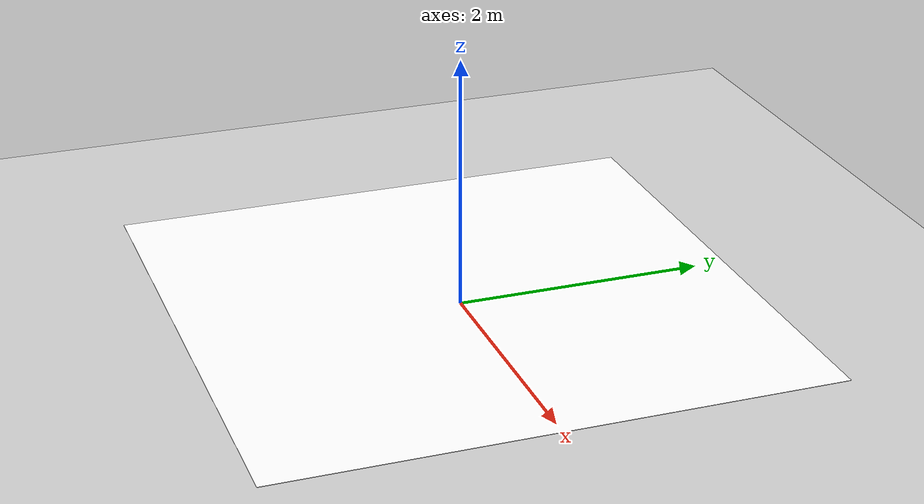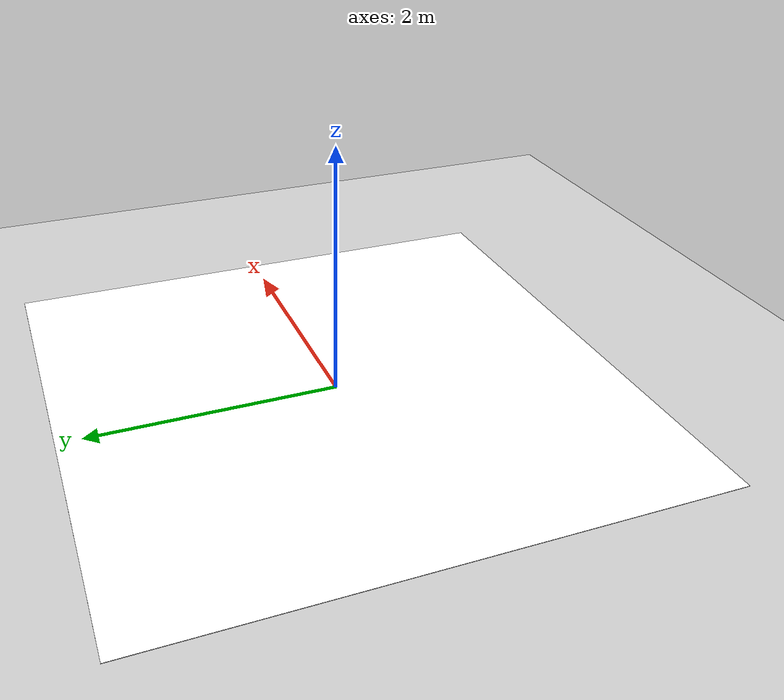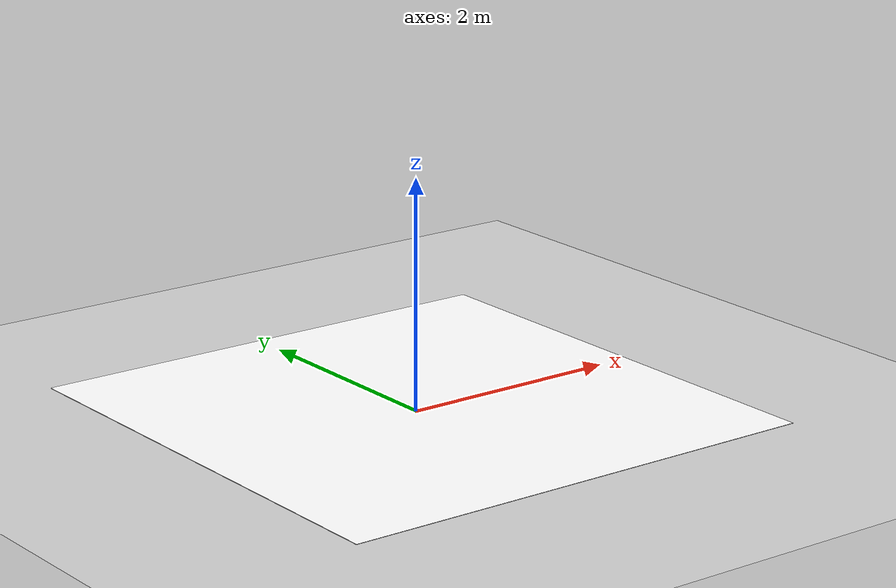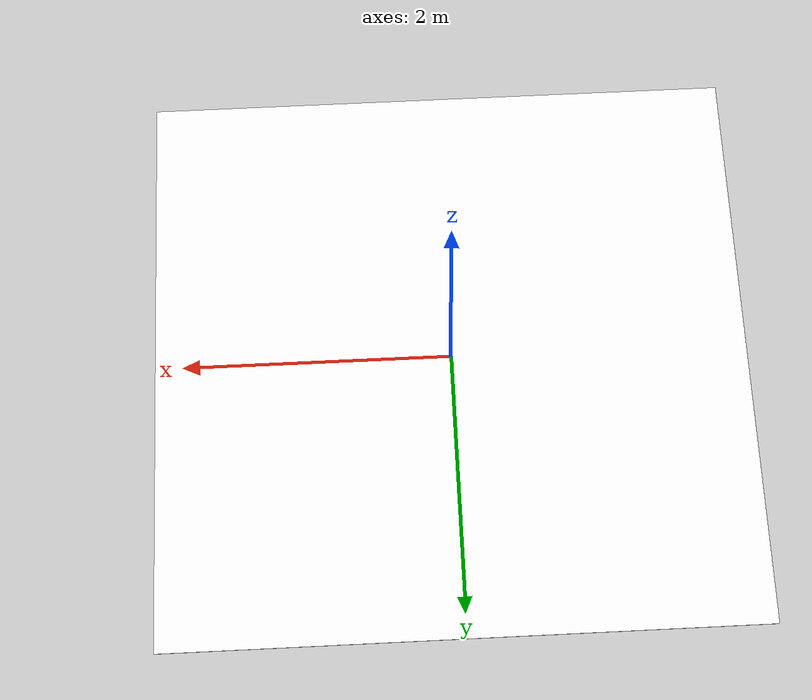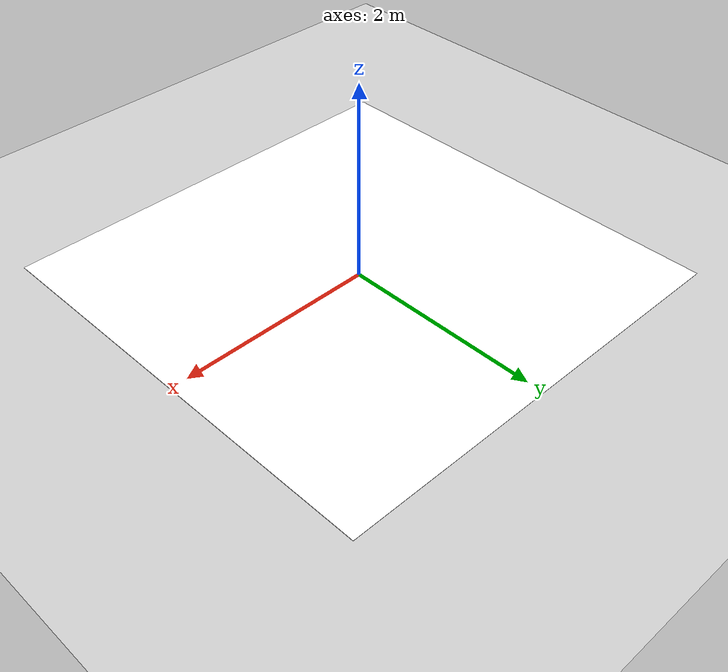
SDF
<?xml version="1.0" ?>
<sdf version="1.8">
  <world name="default">
    <plugin filename="gz-sim-physics-system" name="gz::sim::systems::Physics"/>
    <plugin filename="gz-sim-user-commands-system" name="gz::sim::systems::UserCommands"/>
    <plugin filename="gz-sim-scene-broadcaster-system" name="gz::sim::systems::SceneBroadcaster"/>
    <plugin filename="gz-sim-sensors-system" name="gz::sim::systems::Sensors">
      <render_engine>ogre2</render_engine>
    </plugin>

    <light type="directional" name="sun">
      <cast_shadows>true</cast_shadows>
      <pose>0 0 10 0 0 0</pose>
      <diffuse>1 1 1 1</diffuse>
      <specular>0.5 0.5 0.5 1</specular>
      <direction>-0.5 0.1 -0.9</direction>
    </light>

    <model name="ground_plane">
      <static>true</static>
      <link name="link">
        <collision name="collision">
          <geometry><plane><normal>0 0 1</normal><size>100 100</size></plane></geometry>
        </collision>
        <visual name="visual">
          <geometry><plane><normal>0 0 1</normal><size>100 100</size></plane></geometry>
          <material><ambient>0.8 0.8 0.8 1</ambient><diffuse>0.8 0.8 0.8 1</diffuse></material>
        </visual>
      </link>
    </model>

    <model name="track">
      <static>true</static>
      <include>
        <pose>0 0 0.05 0 0 0</pose>
        <uri>model://track</uri>
      </include>
    </model>
  </world>
</sdf>

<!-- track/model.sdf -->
<sdf version="1.8">
   <model name="track">
      <static>true</static>
      <link name="link">
         <collision name="collision">
            <geometry>
               <plane>
                  <normal>0 0 1</normal>
                  <size>4.4 4.4</size>
               </plane>
            </geometry>
         </collision>
         <visual name="visual">
            <cast_shadows>false</cast_shadows>
            <geometry>
               <plane>
                  <normal>0 0 1</normal>
                  <size>4.4 4.4</size>
               </plane>
            </geometry>
            <material>
               <diffuse>1 1 1 1</diffuse>
               <specular>0.1 0.1 0.1 1</specular>
               <pbr>
                  <metal>
                     <albedo_map>model://track/materials/textures/circular.png</albedo_map>
                     <roughness>0.8</roughness>
                     <metalness>0.0</metalness>
                  </metal>
               </pbr>
            </material>
         </visual>
      </link>
   </model>
</sdf>
